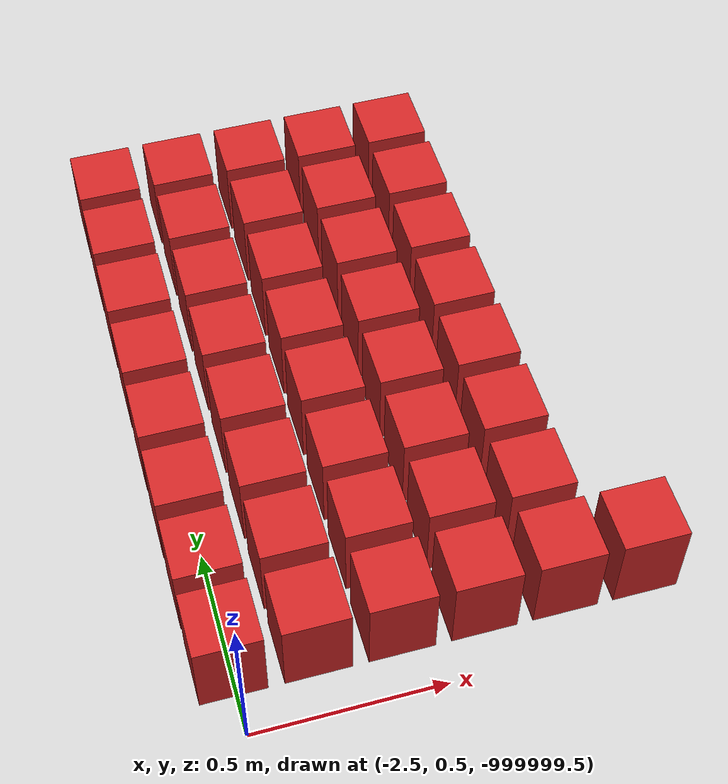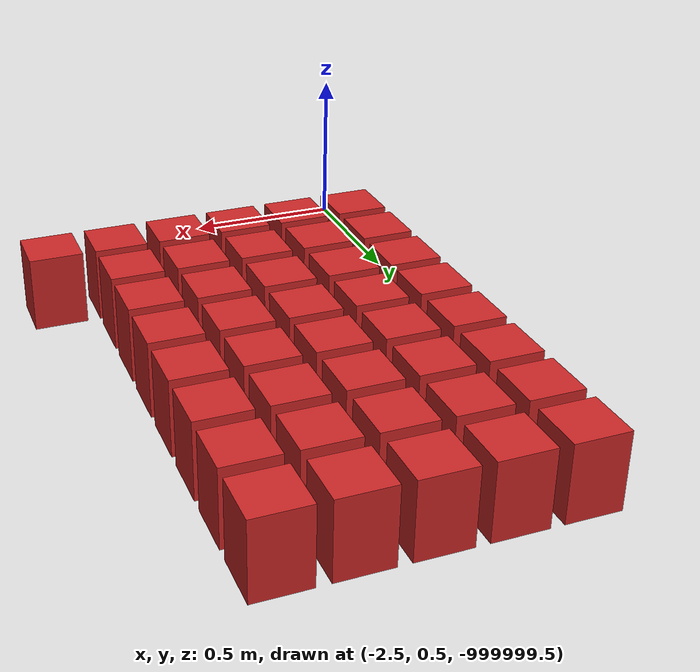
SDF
<sdf version="1.7">
 <world name="default">
  <model name="ground_plane">
   <static>1</static>
   <link name="link">
    <collision name="collision">
     <geometry><plane><normal>0 0 1</normal><size>100 100</size></plane></geometry>
     <surface>
      <contact><collide_bitmask>65535</collide_bitmask></contact>
      <friction><ode><mu>100</mu><mu2>50</mu2></ode></friction>
     </surface>
    </collision>
    <visual name="visual">
     <cast_shadows>0</cast_shadows>
     <geometry><plane><normal>0 0 1</normal><size>100 100</size></plane></geometry>
     <material>
      <script><uri>file://media/materials/scripts/gazebo.material</uri><name>Gazebo/Grey</name></script>
     </material>
    </visual>
   </link>
  </model>
  <model name="wall_345">
   <link name="link">
    <pose>0 0 0.5 0 -0 0</pose>
    <inertial>
     <mass>0.5167</mass>
     <inertia>
      <ixx>0.000861167</ixx>
      <ixy>0</ixy>
      <ixz>0</ixz>
      <iyy>0.000861167</iyy>
      <iyz>0</iyz>
      <izz>0.000861167</izz>
     </inertia>
    </inertial>
    <collision name="collision">
     <geometry><box><size>0.21 0.21 0.25</size></box></geometry>
     <surface>
      <contact>
       <poissons_ratio>0.347</poissons_ratio>
       <elastic_modulus>8.8e+09</elastic_modulus>
       <ode><kp>100000</kp><kd>100</kd><max_vel>100</max_vel><min_depth>0.001</min_depth></ode>
      </contact>
      <friction>
       <torsional>
        <coefficient>1</coefficient>
        <use_patch_radius>0</use_patch_radius>
        <surface_radius>0.01</surface_radius>
       </torsional>
      </friction>
     </surface>
    </collision>
    <visual name="visual">
     <geometry><box><size>0.175 0.175 0.25</size></box></geometry>
     <material>
      <script><uri>file://media/materials/scripts/gazebo.material</uri><name>Gazebo/Red</name></script>
     </material>
    </visual>
   </link>
   <pose>-2.5 0.76087 -1e+06 0 -0 0</pose>
  </model>
  <model name="wall_346">
   <link name="link">
    <pose>0 0 0.5 0 -0 0</pose>
    <inertial>
     <mass>0.5167</mass>
     <inertia>
      <ixx>0.000861167</ixx>
      <ixy>0</ixy>
      <ixz>0</ixz>
      <iyy>0.000861167</iyy>
      <iyz>0</iyz>
      <izz>0.000861167</izz>
     </inertia>
    </inertial>
    <collision name="collision">
     <geometry><box><size>0.21 0.21 0.25</size></box></geometry>
     <surface>
      <contact>
       <poissons_ratio>0.347</poissons_ratio>
       <elastic_modulus>8.8e+09</elastic_modulus>
       <ode><kp>100000</kp><kd>100</kd><max_vel>100</max_vel><min_depth>0.001</min_depth></ode>
      </contact>
      <friction>
       <torsional>
        <coefficient>1</coefficient>
        <use_patch_radius>0</use_patch_radius>
        <surface_radius>0.01</surface_radius>
       </torsional>
      </friction>
     </surface>
    </collision>
    <visual name="visual">
     <geometry><box><size>0.175 0.175 0.25</size></box></geometry>
     <material>
      <script><uri>file://media/materials/scripts/gazebo.material</uri><name>Gazebo/Red</name></script>
     </material>
    </visual>
   </link>
   <pose>-2.28261 0.76087 -1e+06 0 -0 0</pose>
  </model>
  <model name="wall_347">
   <link name="link">
    <pose>0 0 0.5 0 -0 0</pose>
    <inertial>
     <mass>0.5167</mass>
     <inertia>
      <ixx>0.000861167</ixx>
      <ixy>0</ixy>
      <ixz>0</ixz>
      <iyy>0.000861167</iyy>
      <iyz>0</iyz>
      <izz>0.000861167</izz>
     </inertia>
    </inertial>
    <collision name="collision">
     <geometry><box><size>0.21 0.21 0.25</size></box></geometry>
     <surface>
      <contact>
       <poissons_ratio>0.347</poissons_ratio>
       <elastic_modulus>8.8e+09</elastic_modulus>
       <ode><kp>100000</kp><kd>100</kd><max_vel>100</max_vel><min_depth>0.001</min_depth></ode>
      </contact>
      <friction>
       <torsional>
        <coefficient>1</coefficient>
        <use_patch_radius>0</use_patch_radius>
        <surface_radius>0.01</surface_radius>
       </torsional>
      </friction>
     </surface>
    </collision>
    <visual name="visual">
     <geometry><box><size>0.175 0.175 0.25</size></box></geometry>
     <material>
      <script><uri>file://media/materials/scripts/gazebo.material</uri><name>Gazebo/Red</name></script>
     </material>
    </visual>
   </link>
   <pose>-2.06522 0.76087 -1e+06 0 -0 0</pose>
  </model>
  <model name="wall_348">
   <link name="link">
    <pose>0 0 0.5 0 -0 0</pose>
    <inertial>
     <mass>0.5167</mass>
     <inertia>
      <ixx>0.000861167</ixx>
      <ixy>0</ixy>
      <ixz>0</ixz>
      <iyy>0.000861167</iyy>
      <iyz>0</iyz>
      <izz>0.000861167</izz>
     </inertia>
    </inertial>
    <collision name="collision">
     <geometry><box><size>0.21 0.21 0.25</size></box></geometry>
     <surface>
      <contact>
       <poissons_ratio>0.347</poissons_ratio>
       <elastic_modulus>8.8e+09</elastic_modulus>
       <ode><kp>100000</kp><kd>100</kd><max_vel>100</max_vel><min_depth>0.001</min_depth></ode>
      </contact>
      <friction>
       <torsional>
        <coefficient>1</coefficient>
        <use_patch_radius>0</use_patch_radius>
        <surface_radius>0.01</surface_radius>
       </torsional>
      </friction>
     </surface>
    </collision>
    <visual name="visual">
     <geometry><box><size>0.175 0.175 0.25</size></box></geometry>
     <material>
      <script><uri>file://media/materials/scripts/gazebo.material</uri><name>Gazebo/Red</name></script>
     </material>
    </visual>
   </link>
   <pose>-1.84783 0.76087 -1e+06 0 -0 0</pose>
  </model>
  <model name="wall_349">
   <link name="link">
    <pose>0 0 0.5 0 -0 0</pose>
    <inertial>
     <mass>0.5167</mass>
     <inertia>
      <ixx>0.000861167</ixx>
      <ixy>0</ixy>
      <ixz>0</ixz>
      <iyy>0.000861167</iyy>
      <iyz>0</iyz>
      <izz>0.000861167</izz>
     </inertia>
    </inertial>
    <collision name="collision">
     <geometry><box><size>0.21 0.21 0.25</size></box></geometry>
     <surface>
      <contact>
       <poissons_ratio>0.347</poissons_ratio>
       <elastic_modulus>8.8e+09</elastic_modulus>
       <ode><kp>100000</kp><kd>100</kd><max_vel>100</max_vel><min_depth>0.001</min_depth></ode>
      </contact>
      <friction>
       <torsional>
        <coefficient>1</coefficient>
        <use_patch_radius>0</use_patch_radius>
        <surface_radius>0.01</surface_radius>
       </torsional>
      </friction>
     </surface>
    </collision>
    <visual name="visual">
     <geometry><box><size>0.175 0.175 0.25</size></box></geometry>
     <material>
      <script><uri>file://media/materials/scripts/gazebo.material</uri><name>Gazebo/Red</name></script>
     </material>
    </visual>
   </link>
   <pose>-1.63043 0.76087 -1e+06 0 -0 0</pose>
  </model>
  <model name="wall_350">
   <link name="link">
    <pose>0 0 0.5 0 -0 0</pose>
    <inertial>
     <mass>0.5167</mass>
     <inertia>
      <ixx>0.000861167</ixx>
      <ixy>0</ixy>
      <ixz>0</ixz>
      <iyy>0.000861167</iyy>
      <iyz>0</iyz>
      <izz>0.000861167</izz>
     </inertia>
    </inertial>
    <collision name="collision">
     <geometry><box><size>0.21 0.21 0.25</size></box></geometry>
     <surface>
      <contact>
       <poissons_ratio>0.347</poissons_ratio>
       <elastic_modulus>8.8e+09</elastic_modulus>
       <ode><kp>100000</kp><kd>100</kd><max_vel>100</max_vel><min_depth>0.001</min_depth></ode>
      </contact>
      <friction>
       <torsional>
        <coefficient>1</coefficient>
        <use_patch_radius>0</use_patch_radius>
        <surface_radius>0.01</surface_radius>
       </torsional>
      </friction>
     </surface>
    </collision>
    <visual name="visual">
     <geometry><box><size>0.175 0.175 0.25</size></box></geometry>
     <material>
      <script><uri>file://media/materials/scripts/gazebo.material</uri><name>Gazebo/Red</name></script>
     </material>
    </visual>
   </link>
   <pose>-1.41304 0.76087 -1e+06 0 -0 0</pose>
  </model>
  <model name="wall_368">
   <link name="link">
    <pose>0 0 0.5 0 -0 0</pose>
    <inertial>
     <mass>0.5167</mass>
     <inertia>
      <ixx>0.000861167</ixx>
      <ixy>0</ixy>
      <ixz>0</ixz>
      <iyy>0.000861167</iyy>
      <iyz>0</iyz>
      <izz>0.000861167</izz>
     </inertia>
    </inertial>
    <collision name="collision">
     <geometry><box><size>0.21 0.21 0.25</size></box></geometry>
     <surface>
      <contact>
       <poissons_ratio>0.347</poissons_ratio>
       <elastic_modulus>8.8e+09</elastic_modulus>
       <ode><kp>100000</kp><kd>100</kd><max_vel>100</max_vel><min_depth>0.001</min_depth></ode>
      </contact>
      <friction>
       <torsional>
        <coefficient>1</coefficient>
        <use_patch_radius>0</use_patch_radius>
        <surface_radius>0.01</surface_radius>
       </torsional>
      </friction>
     </surface>
    </collision>
    <visual name="visual">
     <geometry><box><size>0.175 0.175 0.25</size></box></geometry>
     <material>
      <script><uri>file://media/materials/scripts/gazebo.material</uri><name>Gazebo/Red</name></script>
     </material>
    </visual>
   </link>
   <pose>-2.5 0.978261 -1e+06 0 -0 0</pose>
  </model>
  <model name="wall_369">
   <link name="link">
    <pose>0 0 0.5 0 -0 0</pose>
    <inertial>
     <mass>0.5167</mass>
     <inertia>
      <ixx>0.000861167</ixx>
      <ixy>0</ixy>
      <ixz>0</ixz>
      <iyy>0.000861167</iyy>
      <iyz>0</iyz>
      <izz>0.000861167</izz>
     </inertia>
    </inertial>
    <collision name="collision">
     <geometry><box><size>0.21 0.21 0.25</size></box></geometry>
     <surface>
      <contact>
       <poissons_ratio>0.347</poissons_ratio>
       <elastic_modulus>8.8e+09</elastic_modulus>
       <ode><kp>100000</kp><kd>100</kd><max_vel>100</max_vel><min_depth>0.001</min_depth></ode>
      </contact>
      <friction>
       <torsional>
        <coefficient>1</coefficient>
        <use_patch_radius>0</use_patch_radius>
        <surface_radius>0.01</surface_radius>
       </torsional>
      </friction>
     </surface>
    </collision>
    <visual name="visual">
     <geometry><box><size>0.175 0.175 0.25</size></box></geometry>
     <material>
      <script><uri>file://media/materials/scripts/gazebo.material</uri><name>Gazebo/Red</name></script>
     </material>
    </visual>
   </link>
   <pose>-2.28261 0.978261 -1e+06 0 -0 0</pose>
  </model>
  <model name="wall_370">
   <link name="link">
    <pose>0 0 0.5 0 -0 0</pose>
    <inertial>
     <mass>0.5167</mass>
     <inertia>
      <ixx>0.000861167</ixx>
      <ixy>0</ixy>
      <ixz>0</ixz>
      <iyy>0.000861167</iyy>
      <iyz>0</iyz>
      <izz>0.000861167</izz>
     </inertia>
    </inertial>
    <collision name="collision">
     <geometry><box><size>0.21 0.21 0.25</size></box></geometry>
     <surface>
      <contact>
       <poissons_ratio>0.347</poissons_ratio>
       <elastic_modulus>8.8e+09</elastic_modulus>
       <ode><kp>100000</kp><kd>100</kd><max_vel>100</max_vel><min_depth>0.001</min_depth></ode>
      </contact>
      <friction>
       <torsional>
        <coefficient>1</coefficient>
        <use_patch_radius>0</use_patch_radius>
        <surface_radius>0.01</surface_radius>
       </torsional>
      </friction>
     </surface>
    </collision>
    <visual name="visual">
     <geometry><box><size>0.175 0.175 0.25</size></box></geometry>
     <material>
      <script><uri>file://media/materials/scripts/gazebo.material</uri><name>Gazebo/Red</name></script>
     </material>
    </visual>
   </link>
   <pose>-2.06522 0.978261 -1e+06 0 -0 0</pose>
  </model>
  <model name="wall_371">
   <link name="link">
    <pose>0 0 0.5 0 -0 0</pose>
    <inertial>
     <mass>0.5167</mass>
     <inertia>
      <ixx>0.000861167</ixx>
      <ixy>0</ixy>
      <ixz>0</ixz>
      <iyy>0.000861167</iyy>
      <iyz>0</iyz>
      <izz>0.000861167</izz>
     </inertia>
    </inertial>
    <collision name="collision">
     <geometry><box><size>0.21 0.21 0.25</size></box></geometry>
     <surface>
      <contact>
       <poissons_ratio>0.347</poissons_ratio>
       <elastic_modulus>8.8e+09</elastic_modulus>
       <ode><kp>100000</kp><kd>100</kd><max_vel>100</max_vel><min_depth>0.001</min_depth></ode>
      </contact>
      <friction>
       <torsional>
        <coefficient>1</coefficient>
        <use_patch_radius>0</use_patch_radius>
        <surface_radius>0.01</surface_radius>
       </torsional>
      </friction>
     </surface>
    </collision>
    <visual name="visual">
     <geometry><box><size>0.175 0.175 0.25</size></box></geometry>
     <material>
      <script><uri>file://media/materials/scripts/gazebo.material</uri><name>Gazebo/Red</name></script>
     </material>
    </visual>
   </link>
   <pose>-1.84783 0.978261 -1e+06 0 -0 0</pose>
  </model>
  <model name="wall_372">
   <link name="link">
    <pose>0 0 0.5 0 -0 0</pose>
    <inertial>
     <mass>0.5167</mass>
     <inertia>
      <ixx>0.000861167</ixx>
      <ixy>0</ixy>
      <ixz>0</ixz>
      <iyy>0.000861167</iyy>
      <iyz>0</iyz>
      <izz>0.000861167</izz>
     </inertia>
    </inertial>
    <collision name="collision">
     <geometry><box><size>0.21 0.21 0.25</size></box></geometry>
     <surface>
      <contact>
       <poissons_ratio>0.347</poissons_ratio>
       <elastic_modulus>8.8e+09</elastic_modulus>
       <ode><kp>100000</kp><kd>100</kd><max_vel>100</max_vel><min_depth>0.001</min_depth></ode>
      </contact>
      <friction>
       <torsional>
        <coefficient>1</coefficient>
        <use_patch_radius>0</use_patch_radius>
        <surface_radius>0.01</surface_radius>
       </torsional>
      </friction>
     </surface>
    </collision>
    <visual name="visual">
     <geometry><box><size>0.175 0.175 0.25</size></box></geometry>
     <material>
      <script><uri>file://media/materials/scripts/gazebo.material</uri><name>Gazebo/Red</name></script>
     </material>
    </visual>
   </link>
   <pose>-1.63043 0.978261 -1e+06 0 -0 0</pose>
  </model>
  <model name="wall_391">
   <link name="link">
    <pose>0 0 0.5 0 -0 0</pose>
    <inertial>
     <mass>0.5167</mass>
     <inertia>
      <ixx>0.000861167</ixx>
      <ixy>0</ixy>
      <ixz>0</ixz>
      <iyy>0.000861167</iyy>
      <iyz>0</iyz>
      <izz>0.000861167</izz>
     </inertia>
    </inertial>
    <collision name="collision">
     <geometry><box><size>0.21 0.21 0.25</size></box></geometry>
     <surface>
      <contact>
       <poissons_ratio>0.347</poissons_ratio>
       <elastic_modulus>8.8e+09</elastic_modulus>
       <ode><kp>100000</kp><kd>100</kd><max_vel>100</max_vel><min_depth>0.001</min_depth></ode>
      </contact>
      <friction>
       <torsional>
        <coefficient>1</coefficient>
        <use_patch_radius>0</use_patch_radius>
        <surface_radius>0.01</surface_radius>
       </torsional>
      </friction>
     </surface>
    </collision>
    <visual name="visual">
     <geometry><box><size>0.175 0.175 0.25</size></box></geometry>
     <material>
      <script><uri>file://media/materials/scripts/gazebo.material</uri><name>Gazebo/Red</name></script>
     </material>
    </visual>
   </link>
   <pose>-2.5 1.19565 -1e+06 0 -0 0</pose>
  </model>
  <model name="wall_392">
   <link name="link">
    <pose>0 0 0.5 0 -0 0</pose>
    <inertial>
     <mass>0.5167</mass>
     <inertia>
      <ixx>0.000861167</ixx>
      <ixy>0</ixy>
      <ixz>0</ixz>
      <iyy>0.000861167</iyy>
      <iyz>0</iyz>
      <izz>0.000861167</izz>
     </inertia>
    </inertial>
    <collision name="collision">
     <geometry><box><size>0.21 0.21 0.25</size></box></geometry>
     <surface>
      <contact>
       <poissons_ratio>0.347</poissons_ratio>
       <elastic_modulus>8.8e+09</elastic_modulus>
       <ode><kp>100000</kp><kd>100</kd><max_vel>100</max_vel><min_depth>0.001</min_depth></ode>
      </contact>
      <friction>
       <torsional>
        <coefficient>1</coefficient>
        <use_patch_radius>0</use_patch_radius>
        <surface_radius>0.01</surface_radius>
       </torsional>
      </friction>
     </surface>
    </collision>
    <visual name="visual">
     <geometry><box><size>0.175 0.175 0.25</size></box></geometry>
     <material>
      <script><uri>file://media/materials/scripts/gazebo.material</uri><name>Gazebo/Red</name></script>
     </material>
    </visual>
   </link>
   <pose>-2.28261 1.19565 -1e+06 0 -0 0</pose>
  </model>
  <model name="wall_393">
   <link name="link">
    <pose>0 0 0.5 0 -0 0</pose>
    <inertial>
     <mass>0.5167</mass>
     <inertia>
      <ixx>0.000861167</ixx>
      <ixy>0</ixy>
      <ixz>0</ixz>
      <iyy>0.000861167</iyy>
      <iyz>0</iyz>
      <izz>0.000861167</izz>
     </inertia>
    </inertial>
    <collision name="collision">
     <geometry><box><size>0.21 0.21 0.25</size></box></geometry>
     <surface>
      <contact>
       <poissons_ratio>0.347</poissons_ratio>
       <elastic_modulus>8.8e+09</elastic_modulus>
       <ode><kp>100000</kp><kd>100</kd><max_vel>100</max_vel><min_depth>0.001</min_depth></ode>
      </contact>
      <friction>
       <torsional>
        <coefficient>1</coefficient>
        <use_patch_radius>0</use_patch_radius>
        <surface_radius>0.01</surface_radius>
       </torsional>
      </friction>
     </surface>
    </collision>
    <visual name="visual">
     <geometry><box><size>0.175 0.175 0.25</size></box></geometry>
     <material>
      <script><uri>file://media/materials/scripts/gazebo.material</uri><name>Gazebo/Red</name></script>
     </material>
    </visual>
   </link>
   <pose>-2.06522 1.19565 -1e+06 0 -0 0</pose>
  </model>
  <model name="wall_394">
   <link name="link">
    <pose>0 0 0.5 0 -0 0</pose>
    <inertial>
     <mass>0.5167</mass>
     <inertia>
      <ixx>0.000861167</ixx>
      <ixy>0</ixy>
      <ixz>0</ixz>
      <iyy>0.000861167</iyy>
      <iyz>0</iyz>
      <izz>0.000861167</izz>
     </inertia>
    </inertial>
    <collision name="collision">
     <geometry><box><size>0.21 0.21 0.25</size></box></geometry>
     <surface>
      <contact>
       <poissons_ratio>0.347</poissons_ratio>
       <elastic_modulus>8.8e+09</elastic_modulus>
       <ode><kp>100000</kp><kd>100</kd><max_vel>100</max_vel><min_depth>0.001</min_depth></ode>
      </contact>
      <friction>
       <torsional>
        <coefficient>1</coefficient>
        <use_patch_radius>0</use_patch_radius>
        <surface_radius>0.01</surface_radius>
       </torsional>
      </friction>
     </surface>
    </collision>
    <visual name="visual">
     <geometry><box><size>0.175 0.175 0.25</size></box></geometry>
     <material>
      <script><uri>file://media/materials/scripts/gazebo.material</uri><name>Gazebo/Red</name></script>
     </material>
    </visual>
   </link>
   <pose>-1.84783 1.19565 -1e+06 0 -0 0</pose>
  </model>
  <model name="wall_395">
   <link name="link">
    <pose>0 0 0.5 0 -0 0</pose>
    <inertial>
     <mass>0.5167</mass>
     <inertia>
      <ixx>0.000861167</ixx>
      <ixy>0</ixy>
      <ixz>0</ixz>
      <iyy>0.000861167</iyy>
      <iyz>0</iyz>
      <izz>0.000861167</izz>
     </inertia>
    </inertial>
    <collision name="collision">
     <geometry><box><size>0.21 0.21 0.25</size></box></geometry>
     <surface>
      <contact>
       <poissons_ratio>0.347</poissons_ratio>
       <elastic_modulus>8.8e+09</elastic_modulus>
       <ode><kp>100000</kp><kd>100</kd><max_vel>100</max_vel><min_depth>0.001</min_depth></ode>
      </contact>
      <friction>
       <torsional>
        <coefficient>1</coefficient>
        <use_patch_radius>0</use_patch_radius>
        <surface_radius>0.01</surface_radius>
       </torsional>
      </friction>
     </surface>
    </collision>
    <visual name="visual">
     <geometry><box><size>0.175 0.175 0.25</size></box></geometry>
     <material>
      <script><uri>file://media/materials/scripts/gazebo.material</uri><name>Gazebo/Red</name></script>
     </material>
    </visual>
   </link>
   <pose>-1.63043 1.19565 -1e+06 0 -0 0</pose>
  </model>
  <model name="wall_414">
   <link name="link">
    <pose>0 0 0.5 0 -0 0</pose>
    <inertial>
     <mass>0.5167</mass>
     <inertia>
      <ixx>0.000861167</ixx>
      <ixy>0</ixy>
      <ixz>0</ixz>
      <iyy>0.000861167</iyy>
      <iyz>0</iyz>
      <izz>0.000861167</izz>
     </inertia>
    </inertial>
    <collision name="collision">
     <geometry><box><size>0.21 0.21 0.25</size></box></geometry>
     <surface>
      <contact>
       <poissons_ratio>0.347</poissons_ratio>
       <elastic_modulus>8.8e+09</elastic_modulus>
       <ode><kp>100000</kp><kd>100</kd><max_vel>100</max_vel><min_depth>0.001</min_depth></ode>
      </contact>
      <friction>
       <torsional>
        <coefficient>1</coefficient>
        <use_patch_radius>0</use_patch_radius>
        <surface_radius>0.01</surface_radius>
       </torsional>
      </friction>
     </surface>
    </collision>
    <visual name="visual">
     <geometry><box><size>0.175 0.175 0.25</size></box></geometry>
     <material>
      <script><uri>file://media/materials/scripts/gazebo.material</uri><name>Gazebo/Red</name></script>
     </material>
    </visual>
   </link>
   <pose>-2.5 1.41304 -1e+06 0 -0 0</pose>
  </model>
  <model name="wall_415">
   <link name="link">
    <pose>0 0 0.5 0 -0 0</pose>
    <inertial>
     <mass>0.5167</mass>
     <inertia>
      <ixx>0.000861167</ixx>
      <ixy>0</ixy>
      <ixz>0</ixz>
      <iyy>0.000861167</iyy>
      <iyz>0</iyz>
      <izz>0.000861167</izz>
     </inertia>
    </inertial>
    <collision name="collision">
     <geometry><box><size>0.21 0.21 0.25</size></box></geometry>
     <surface>
      <contact>
       <poissons_ratio>0.347</poissons_ratio>
       <elastic_modulus>8.8e+09</elastic_modulus>
       <ode><kp>100000</kp><kd>100</kd><max_vel>100</max_vel><min_depth>0.001</min_depth></ode>
      </contact>
      <friction>
       <torsional>
        <coefficient>1</coefficient>
        <use_patch_radius>0</use_patch_radius>
        <surface_radius>0.01</surface_radius>
       </torsional>
      </friction>
     </surface>
    </collision>
    <visual name="visual">
     <geometry><box><size>0.175 0.175 0.25</size></box></geometry>
     <material>
      <script><uri>file://media/materials/scripts/gazebo.material</uri><name>Gazebo/Red</name></script>
     </material>
    </visual>
   </link>
   <pose>-2.28261 1.41304 -1e+06 0 -0 0</pose>
  </model>
  <model name="wall_416">
   <link name="link">
    <pose>0 0 0.5 0 -0 0</pose>
    <inertial>
     <mass>0.5167</mass>
     <inertia>
      <ixx>0.000861167</ixx>
      <ixy>0</ixy>
      <ixz>0</ixz>
      <iyy>0.000861167</iyy>
      <iyz>0</iyz>
      <izz>0.000861167</izz>
     </inertia>
    </inertial>
    <collision name="collision">
     <geometry><box><size>0.21 0.21 0.25</size></box></geometry>
     <surface>
      <contact>
       <poissons_ratio>0.347</poissons_ratio>
       <elastic_modulus>8.8e+09</elastic_modulus>
       <ode><kp>100000</kp><kd>100</kd><max_vel>100</max_vel><min_depth>0.001</min_depth></ode>
      </contact>
      <friction>
       <torsional>
        <coefficient>1</coefficient>
        <use_patch_radius>0</use_patch_radius>
        <surface_radius>0.01</surface_radius>
       </torsional>
      </friction>
     </surface>
    </collision>
    <visual name="visual">
     <geometry><box><size>0.175 0.175 0.25</size></box></geometry>
     <material>
      <script><uri>file://media/materials/scripts/gazebo.material</uri><name>Gazebo/Red</name></script>
     </material>
    </visual>
   </link>
   <pose>-2.06522 1.41304 -1e+06 0 -0 0</pose>
  </model>
  <model name="wall_417">
   <link name="link">
    <pose>0 0 0.5 0 -0 0</pose>
    <inertial>
     <mass>0.5167</mass>
     <inertia>
      <ixx>0.000861167</ixx>
      <ixy>0</ixy>
      <ixz>0</ixz>
      <iyy>0.000861167</iyy>
      <iyz>0</iyz>
      <izz>0.000861167</izz>
     </inertia>
    </inertial>
    <collision name="collision">
     <geometry><box><size>0.21 0.21 0.25</size></box></geometry>
     <surface>
      <contact>
       <poissons_ratio>0.347</poissons_ratio>
       <elastic_modulus>8.8e+09</elastic_modulus>
       <ode><kp>100000</kp><kd>100</kd><max_vel>100</max_vel><min_depth>0.001</min_depth></ode>
      </contact>
      <friction>
       <torsional>
        <coefficient>1</coefficient>
        <use_patch_radius>0</use_patch_radius>
        <surface_radius>0.01</surface_radius>
       </torsional>
      </friction>
     </surface>
    </collision>
    <visual name="visual">
     <geometry><box><size>0.175 0.175 0.25</size></box></geometry>
     <material>
      <script><uri>file://media/materials/scripts/gazebo.material</uri><name>Gazebo/Red</name></script>
     </material>
    </visual>
   </link>
   <pose>-1.84783 1.41304 -1e+06 0 -0 0</pose>
  </model>
  <model name="wall_418">
   <link name="link">
    <pose>0 0 0.5 0 -0 0</pose>
    <inertial>
     <mass>0.5167</mass>
     <inertia>
      <ixx>0.000861167</ixx>
      <ixy>0</ixy>
      <ixz>0</ixz>
      <iyy>0.000861167</iyy>
      <iyz>0</iyz>
      <izz>0.000861167</izz>
     </inertia>
    </inertial>
    <collision name="collision">
     <geometry><box><size>0.21 0.21 0.25</size></box></geometry>
     <surface>
      <contact>
       <poissons_ratio>0.347</poissons_ratio>
       <elastic_modulus>8.8e+09</elastic_modulus>
       <ode><kp>100000</kp><kd>100</kd><max_vel>100</max_vel><min_depth>0.001</min_depth></ode>
      </contact>
      <friction>
       <torsional>
        <coefficient>1</coefficient>
        <use_patch_radius>0</use_patch_radius>
        <surface_radius>0.01</surface_radius>
       </torsional>
      </friction>
     </surface>
    </collision>
    <visual name="visual">
     <geometry><box><size>0.175 0.175 0.25</size></box></geometry>
     <material>
      <script><uri>file://media/materials/scripts/gazebo.material</uri><name>Gazebo/Red</name></script>
     </material>
    </visual>
   </link>
   <pose>-1.63043 1.41304 -1e+06 0 -0 0</pose>
  </model>
  <model name="wall_437">
   <link name="link">
    <pose>0 0 0.5 0 -0 0</pose>
    <inertial>
     <mass>0.5167</mass>
     <inertia>
      <ixx>0.000861167</ixx>
      <ixy>0</ixy>
      <ixz>0</ixz>
      <iyy>0.000861167</iyy>
      <iyz>0</iyz>
      <izz>0.000861167</izz>
     </inertia>
    </inertial>
    <collision name="collision">
     <geometry><box><size>0.21 0.21 0.25</size></box></geometry>
     <surface>
      <contact>
       <poissons_ratio>0.347</poissons_ratio>
       <elastic_modulus>8.8e+09</elastic_modulus>
       <ode><kp>100000</kp><kd>100</kd><max_vel>100</max_vel><min_depth>0.001</min_depth></ode>
      </contact>
      <friction>
       <torsional>
        <coefficient>1</coefficient>
        <use_patch_radius>0</use_patch_radius>
        <surface_radius>0.01</surface_radius>
       </torsional>
      </friction>
     </surface>
    </collision>
    <visual name="visual">
     <geometry><box><size>0.175 0.175 0.25</size></box></geometry>
     <material>
      <script><uri>file://media/materials/scripts/gazebo.material</uri><name>Gazebo/Red</name></script>
     </material>
    </visual>
   </link>
   <pose>-2.5 1.63043 -1e+06 0 -0 0</pose>
  </model>
  <model name="wall_438">
   <link name="link">
    <pose>0 0 0.5 0 -0 0</pose>
    <inertial>
     <mass>0.5167</mass>
     <inertia>
      <ixx>0.000861167</ixx>
      <ixy>0</ixy>
      <ixz>0</ixz>
      <iyy>0.000861167</iyy>
      <iyz>0</iyz>
      <izz>0.000861167</izz>
     </inertia>
    </inertial>
    <collision name="collision">
     <geometry><box><size>0.21 0.21 0.25</size></box></geometry>
     <surface>
      <contact>
       <poissons_ratio>0.347</poissons_ratio>
       <elastic_modulus>8.8e+09</elastic_modulus>
       <ode><kp>100000</kp><kd>100</kd><max_vel>100</max_vel><min_depth>0.001</min_depth></ode>
      </contact>
      <friction>
       <torsional>
        <coefficient>1</coefficient>
        <use_patch_radius>0</use_patch_radius>
        <surface_radius>0.01</surface_radius>
       </torsional>
      </friction>
     </surface>
    </collision>
    <visual name="visual">
     <geometry><box><size>0.175 0.175 0.25</size></box></geometry>
     <material>
      <script><uri>file://media/materials/scripts/gazebo.material</uri><name>Gazebo/Red</name></script>
     </material>
    </visual>
   </link>
   <pose>-2.28261 1.63043 -1e+06 0 -0 0</pose>
  </model>
  <model name="wall_439">
   <link name="link">
    <pose>0 0 0.5 0 -0 0</pose>
    <inertial>
     <mass>0.5167</mass>
     <inertia>
      <ixx>0.000861167</ixx>
      <ixy>0</ixy>
      <ixz>0</ixz>
      <iyy>0.000861167</iyy>
      <iyz>0</iyz>
      <izz>0.000861167</izz>
     </inertia>
    </inertial>
    <collision name="collision">
     <geometry><box><size>0.21 0.21 0.25</size></box></geometry>
     <surface>
      <contact>
       <poissons_ratio>0.347</poissons_ratio>
       <elastic_modulus>8.8e+09</elastic_modulus>
       <ode><kp>100000</kp><kd>100</kd><max_vel>100</max_vel><min_depth>0.001</min_depth></ode>
      </contact>
      <friction>
       <torsional>
        <coefficient>1</coefficient>
        <use_patch_radius>0</use_patch_radius>
        <surface_radius>0.01</surface_radius>
       </torsional>
      </friction>
     </surface>
    </collision>
    <visual name="visual">
     <geometry><box><size>0.175 0.175 0.25</size></box></geometry>
     <material>
      <script><uri>file://media/materials/scripts/gazebo.material</uri><name>Gazebo/Red</name></script>
     </material>
    </visual>
   </link>
   <pose>-2.06522 1.63043 -1e+06 0 -0 0</pose>
  </model>
  <model name="wall_440">
   <link name="link">
    <pose>0 0 0.5 0 -0 0</pose>
    <inertial>
     <mass>0.5167</mass>
     <inertia>
      <ixx>0.000861167</ixx>
      <ixy>0</ixy>
      <ixz>0</ixz>
      <iyy>0.000861167</iyy>
      <iyz>0</iyz>
      <izz>0.000861167</izz>
     </inertia>
    </inertial>
    <collision name="collision">
     <geometry><box><size>0.21 0.21 0.25</size></box></geometry>
     <surface>
      <contact>
       <poissons_ratio>0.347</poissons_ratio>
       <elastic_modulus>8.8e+09</elastic_modulus>
       <ode><kp>100000</kp><kd>100</kd><max_vel>100</max_vel><min_depth>0.001</min_depth></ode>
      </contact>
      <friction>
       <torsional>
        <coefficient>1</coefficient>
        <use_patch_radius>0</use_patch_radius>
        <surface_radius>0.01</surface_radius>
       </torsional>
      </friction>
     </surface>
    </collision>
    <visual name="visual">
     <geometry><box><size>0.175 0.175 0.25</size></box></geometry>
     <material>
      <script><uri>file://media/materials/scripts/gazebo.material</uri><name>Gazebo/Red</name></script>
     </material>
    </visual>
   </link>
   <pose>-1.84783 1.63043 -1e+06 0 -0 0</pose>
  </model>
  <model name="wall_441">
   <link name="link">
    <pose>0 0 0.5 0 -0 0</pose>
    <inertial>
     <mass>0.5167</mass>
     <inertia>
      <ixx>0.000861167</ixx>
      <ixy>0</ixy>
      <ixz>0</ixz>
      <iyy>0.000861167</iyy>
      <iyz>0</iyz>
      <izz>0.000861167</izz>
     </inertia>
    </inertial>
    <collision name="collision">
     <geometry><box><size>0.21 0.21 0.25</size></box></geometry>
     <surface>
      <contact>
       <poissons_ratio>0.347</poissons_ratio>
       <elastic_modulus>8.8e+09</elastic_modulus>
       <ode><kp>100000</kp><kd>100</kd><max_vel>100</max_vel><min_depth>0.001</min_depth></ode>
      </contact>
      <friction>
       <torsional>
        <coefficient>1</coefficient>
        <use_patch_radius>0</use_patch_radius>
        <surface_radius>0.01</surface_radius>
       </torsional>
      </friction>
     </surface>
    </collision>
    <visual name="visual">
     <geometry><box><size>0.175 0.175 0.25</size></box></geometry>
     <material>
      <script><uri>file://media/materials/scripts/gazebo.material</uri><name>Gazebo/Red</name></script>
     </material>
    </visual>
   </link>
   <pose>-1.63043 1.63043 -1e+06 0 -0 0</pose>
  </model>
  <model name="wall_460">
   <link name="link">
    <pose>0 0 0.5 0 -0 0</pose>
    <inertial>
     <mass>0.5167</mass>
     <inertia>
      <ixx>0.000861167</ixx>
      <ixy>0</ixy>
      <ixz>0</ixz>
      <iyy>0.000861167</iyy>
      <iyz>0</iyz>
      <izz>0.000861167</izz>
     </inertia>
    </inertial>
    <collision name="collision">
     <geometry><box><size>0.21 0.21 0.25</size></box></geometry>
     <surface>
      <contact>
       <poissons_ratio>0.347</poissons_ratio>
       <elastic_modulus>8.8e+09</elastic_modulus>
       <ode><kp>100000</kp><kd>100</kd><max_vel>100</max_vel><min_depth>0.001</min_depth></ode>
      </contact>
      <friction>
       <torsional>
        <coefficient>1</coefficient>
        <use_patch_radius>0</use_patch_radius>
        <surface_radius>0.01</surface_radius>
       </torsional>
      </friction>
     </surface>
    </collision>
    <visual name="visual">
     <geometry><box><size>0.175 0.175 0.25</size></box></geometry>
     <material>
      <script><uri>file://media/materials/scripts/gazebo.material</uri><name>Gazebo/Red</name></script>
     </material>
    </visual>
   </link>
   <pose>-2.5 1.84783 -1e+06 0 -0 0</pose>
  </model>
  <model name="wall_461">
   <link name="link">
    <pose>0 0 0.5 0 -0 0</pose>
    <inertial>
     <mass>0.5167</mass>
     <inertia>
      <ixx>0.000861167</ixx>
      <ixy>0</ixy>
      <ixz>0</ixz>
      <iyy>0.000861167</iyy>
      <iyz>0</iyz>
      <izz>0.000861167</izz>
     </inertia>
    </inertial>
    <collision name="collision">
     <geometry><box><size>0.21 0.21 0.25</size></box></geometry>
     <surface>
      <contact>
       <poissons_ratio>0.347</poissons_ratio>
       <elastic_modulus>8.8e+09</elastic_modulus>
       <ode><kp>100000</kp><kd>100</kd><max_vel>100</max_vel><min_depth>0.001</min_depth></ode>
      </contact>
      <friction>
       <torsional>
        <coefficient>1</coefficient>
        <use_patch_radius>0</use_patch_radius>
        <surface_radius>0.01</surface_radius>
       </torsional>
      </friction>
     </surface>
    </collision>
    <visual name="visual">
     <geometry><box><size>0.175 0.175 0.25</size></box></geometry>
     <material>
      <script><uri>file://media/materials/scripts/gazebo.material</uri><name>Gazebo/Red</name></script>
     </material>
    </visual>
   </link>
   <pose>-2.28261 1.84783 -1e+06 0 -0 0</pose>
  </model>
  <model name="wall_462">
   <link name="link">
    <pose>0 0 0.5 0 -0 0</pose>
    <inertial>
     <mass>0.5167</mass>
     <inertia>
      <ixx>0.000861167</ixx>
      <ixy>0</ixy>
      <ixz>0</ixz>
      <iyy>0.000861167</iyy>
      <iyz>0</iyz>
      <izz>0.000861167</izz>
     </inertia>
    </inertial>
    <collision name="collision">
     <geometry><box><size>0.21 0.21 0.25</size></box></geometry>
     <surface>
      <contact>
       <poissons_ratio>0.347</poissons_ratio>
       <elastic_modulus>8.8e+09</elastic_modulus>
       <ode><kp>100000</kp><kd>100</kd><max_vel>100</max_vel><min_depth>0.001</min_depth></ode>
      </contact>
      <friction>
       <torsional>
        <coefficient>1</coefficient>
        <use_patch_radius>0</use_patch_radius>
        <surface_radius>0.01</surface_radius>
       </torsional>
      </friction>
     </surface>
    </collision>
    <visual name="visual">
     <geometry><box><size>0.175 0.175 0.25</size></box></geometry>
     <material>
      <script><uri>file://media/materials/scripts/gazebo.material</uri><name>Gazebo/Red</name></script>
     </material>
    </visual>
   </link>
   <pose>-2.06522 1.84783 -1e+06 0 -0 0</pose>
  </model>
  <model name="wall_463">
   <link name="link">
    <pose>0 0 0.5 0 -0 0</pose>
    <inertial>
     <mass>0.5167</mass>
     <inertia>
      <ixx>0.000861167</ixx>
      <ixy>0</ixy>
      <ixz>0</ixz>
      <iyy>0.000861167</iyy>
      <iyz>0</iyz>
      <izz>0.000861167</izz>
     </inertia>
    </inertial>
    <collision name="collision">
     <geometry><box><size>0.21 0.21 0.25</size></box></geometry>
     <surface>
      <contact>
       <poissons_ratio>0.347</poissons_ratio>
       <elastic_modulus>8.8e+09</elastic_modulus>
       <ode><kp>100000</kp><kd>100</kd><max_vel>100</max_vel><min_depth>0.001</min_depth></ode>
      </contact>
      <friction>
       <torsional>
        <coefficient>1</coefficient>
        <use_patch_radius>0</use_patch_radius>
        <surface_radius>0.01</surface_radius>
       </torsional>
      </friction>
     </surface>
    </collision>
    <visual name="visual">
     <geometry><box><size>0.175 0.175 0.25</size></box></geometry>
     <material>
      <script><uri>file://media/materials/scripts/gazebo.material</uri><name>Gazebo/Red</name></script>
     </material>
    </visual>
   </link>
   <pose>-1.84783 1.84783 -1e+06 0 -0 0</pose>
  </model>
  <model name="wall_464">
   <link name="link">
    <pose>0 0 0.5 0 -0 0</pose>
    <inertial>
     <mass>0.5167</mass>
     <inertia>
      <ixx>0.000861167</ixx>
      <ixy>0</ixy>
      <ixz>0</ixz>
      <iyy>0.000861167</iyy>
      <iyz>0</iyz>
      <izz>0.000861167</izz>
     </inertia>
    </inertial>
    <collision name="collision">
     <geometry><box><size>0.21 0.21 0.25</size></box></geometry>
     <surface>
      <contact>
       <poissons_ratio>0.347</poissons_ratio>
       <elastic_modulus>8.8e+09</elastic_modulus>
       <ode><kp>100000</kp><kd>100</kd><max_vel>100</max_vel><min_depth>0.001</min_depth></ode>
      </contact>
      <friction>
       <torsional>
        <coefficient>1</coefficient>
        <use_patch_radius>0</use_patch_radius>
        <surface_radius>0.01</surface_radius>
       </torsional>
      </friction>
     </surface>
    </collision>
    <visual name="visual">
     <geometry><box><size>0.175 0.175 0.25</size></box></geometry>
     <material>
      <script><uri>file://media/materials/scripts/gazebo.material</uri><name>Gazebo/Red</name></script>
     </material>
    </visual>
   </link>
   <pose>-1.63043 1.84783 -1e+06 0 -0 0</pose>
  </model>
  <model name="wall_483">
   <link name="link">
    <pose>0 0 0.5 0 -0 0</pose>
    <inertial>
     <mass>0.5167</mass>
     <inertia>
      <ixx>0.000861167</ixx>
      <ixy>0</ixy>
      <ixz>0</ixz>
      <iyy>0.000861167</iyy>
      <iyz>0</iyz>
      <izz>0.000861167</izz>
     </inertia>
    </inertial>
    <collision name="collision">
     <geometry><box><size>0.21 0.21 0.25</size></box></geometry>
     <surface>
      <contact>
       <poissons_ratio>0.347</poissons_ratio>
       <elastic_modulus>8.8e+09</elastic_modulus>
       <ode><kp>100000</kp><kd>100</kd><max_vel>100</max_vel><min_depth>0.001</min_depth></ode>
      </contact>
      <friction>
       <torsional>
        <coefficient>1</coefficient>
        <use_patch_radius>0</use_patch_radius>
        <surface_radius>0.01</surface_radius>
       </torsional>
      </friction>
     </surface>
    </collision>
    <visual name="visual">
     <geometry><box><size>0.175 0.175 0.25</size></box></geometry>
     <material>
      <script><uri>file://media/materials/scripts/gazebo.material</uri><name>Gazebo/Red</name></script>
     </material>
    </visual>
   </link>
   <pose>-2.5 2.06522 -1e+06 0 -0 0</pose>
  </model>
  <model name="wall_484">
   <link name="link">
    <pose>0 0 0.5 0 -0 0</pose>
    <inertial>
     <mass>0.5167</mass>
     <inertia>
      <ixx>0.000861167</ixx>
      <ixy>0</ixy>
      <ixz>0</ixz>
      <iyy>0.000861167</iyy>
      <iyz>0</iyz>
      <izz>0.000861167</izz>
     </inertia>
    </inertial>
    <collision name="collision">
     <geometry><box><size>0.21 0.21 0.25</size></box></geometry>
     <surface>
      <contact>
       <poissons_ratio>0.347</poissons_ratio>
       <elastic_modulus>8.8e+09</elastic_modulus>
       <ode><kp>100000</kp><kd>100</kd><max_vel>100</max_vel><min_depth>0.001</min_depth></ode>
      </contact>
      <friction>
       <torsional>
        <coefficient>1</coefficient>
        <use_patch_radius>0</use_patch_radius>
        <surface_radius>0.01</surface_radius>
       </torsional>
      </friction>
     </surface>
    </collision>
    <visual name="visual">
     <geometry><box><size>0.175 0.175 0.25</size></box></geometry>
     <material>
      <script><uri>file://media/materials/scripts/gazebo.material</uri><name>Gazebo/Red</name></script>
     </material>
    </visual>
   </link>
   <pose>-2.28261 2.06522 -1e+06 0 -0 0</pose>
  </model>
  <model name="wall_485">
   <link name="link">
    <pose>0 0 0.5 0 -0 0</pose>
    <inertial>
     <mass>0.5167</mass>
     <inertia>
      <ixx>0.000861167</ixx>
      <ixy>0</ixy>
      <ixz>0</ixz>
      <iyy>0.000861167</iyy>
      <iyz>0</iyz>
      <izz>0.000861167</izz>
     </inertia>
    </inertial>
    <collision name="collision">
     <geometry><box><size>0.21 0.21 0.25</size></box></geometry>
     <surface>
      <contact>
       <poissons_ratio>0.347</poissons_ratio>
       <elastic_modulus>8.8e+09</elastic_modulus>
       <ode><kp>100000</kp><kd>100</kd><max_vel>100</max_vel><min_depth>0.001</min_depth></ode>
      </contact>
      <friction>
       <torsional>
        <coefficient>1</coefficient>
        <use_patch_radius>0</use_patch_radius>
        <surface_radius>0.01</surface_radius>
       </torsional>
      </friction>
     </surface>
    </collision>
    <visual name="visual">
     <geometry><box><size>0.175 0.175 0.25</size></box></geometry>
     <material>
      <script><uri>file://media/materials/scripts/gazebo.material</uri><name>Gazebo/Red</name></script>
     </material>
    </visual>
   </link>
   <pose>-2.06522 2.06522 -1e+06 0 -0 0</pose>
  </model>
  <model name="wall_486">
   <link name="link">
    <pose>0 0 0.5 0 -0 0</pose>
    <inertial>
     <mass>0.5167</mass>
     <inertia>
      <ixx>0.000861167</ixx>
      <ixy>0</ixy>
      <ixz>0</ixz>
      <iyy>0.000861167</iyy>
      <iyz>0</iyz>
      <izz>0.000861167</izz>
     </inertia>
    </inertial>
    <collision name="collision">
     <geometry><box><size>0.21 0.21 0.25</size></box></geometry>
     <surface>
      <contact>
       <poissons_ratio>0.347</poissons_ratio>
       <elastic_modulus>8.8e+09</elastic_modulus>
       <ode><kp>100000</kp><kd>100</kd><max_vel>100</max_vel><min_depth>0.001</min_depth></ode>
      </contact>
      <friction>
       <torsional>
        <coefficient>1</coefficient>
        <use_patch_radius>0</use_patch_radius>
        <surface_radius>0.01</surface_radius>
       </torsional>
      </friction>
     </surface>
    </collision>
    <visual name="visual">
     <geometry><box><size>0.175 0.175 0.25</size></box></geometry>
     <material>
      <script><uri>file://media/materials/scripts/gazebo.material</uri><name>Gazebo/Red</name></script>
     </material>
    </visual>
   </link>
   <pose>-1.84783 2.06522 -1e+06 0 -0 0</pose>
  </model>
  <model name="wall_487">
   <link name="link">
    <pose>0 0 0.5 0 -0 0</pose>
    <inertial>
     <mass>0.5167</mass>
     <inertia>
      <ixx>0.000861167</ixx>
      <ixy>0</ixy>
      <ixz>0</ixz>
      <iyy>0.000861167</iyy>
      <iyz>0</iyz>
      <izz>0.000861167</izz>
     </inertia>
    </inertial>
    <collision name="collision">
     <geometry><box><size>0.21 0.21 0.25</size></box></geometry>
     <surface>
      <contact>
       <poissons_ratio>0.347</poissons_ratio>
       <elastic_modulus>8.8e+09</elastic_modulus>
       <ode><kp>100000</kp><kd>100</kd><max_vel>100</max_vel><min_depth>0.001</min_depth></ode>
      </contact>
      <friction>
       <torsional>
        <coefficient>1</coefficient>
        <use_patch_radius>0</use_patch_radius>
        <surface_radius>0.01</surface_radius>
       </torsional>
      </friction>
     </surface>
    </collision>
    <visual name="visual">
     <geometry><box><size>0.175 0.175 0.25</size></box></geometry>
     <material>
      <script><uri>file://media/materials/scripts/gazebo.material</uri><name>Gazebo/Red</name></script>
     </material>
    </visual>
   </link>
   <pose>-1.63043 2.06522 -1e+06 0 -0 0</pose>
  </model>
  <model name="wall_506">
   <link name="link">
    <pose>0 0 0.5 0 -0 0</pose>
    <inertial>
     <mass>0.5167</mass>
     <inertia>
      <ixx>0.000861167</ixx>
      <ixy>0</ixy>
      <ixz>0</ixz>
      <iyy>0.000861167</iyy>
      <iyz>0</iyz>
      <izz>0.000861167</izz>
     </inertia>
    </inertial>
    <collision name="collision">
     <geometry><box><size>0.21 0.21 0.25</size></box></geometry>
     <surface>
      <contact>
       <poissons_ratio>0.347</poissons_ratio>
       <elastic_modulus>8.8e+09</elastic_modulus>
       <ode><kp>100000</kp><kd>100</kd><max_vel>100</max_vel><min_depth>0.001</min_depth></ode>
      </contact>
      <friction>
       <torsional>
        <coefficient>1</coefficient>
        <use_patch_radius>0</use_patch_radius>
        <surface_radius>0.01</surface_radius>
       </torsional>
      </friction>
     </surface>
    </collision>
    <visual name="visual">
     <geometry><box><size>0.175 0.175 0.25</size></box></geometry>
     <material>
      <script><uri>file://media/materials/scripts/gazebo.material</uri><name>Gazebo/Red</name></script>
     </material>
    </visual>
   </link>
   <pose>-2.5 2.28261 -1e+06 0 -0 0</pose>
  </model>
  <model name="wall_507">
   <link name="link">
    <pose>0 0 0.5 0 -0 0</pose>
    <inertial>
     <mass>0.5167</mass>
     <inertia>
      <ixx>0.000861167</ixx>
      <ixy>0</ixy>
      <ixz>0</ixz>
      <iyy>0.000861167</iyy>
      <iyz>0</iyz>
      <izz>0.000861167</izz>
     </inertia>
    </inertial>
    <collision name="collision">
     <geometry><box><size>0.21 0.21 0.25</size></box></geometry>
     <surface>
      <contact>
       <poissons_ratio>0.347</poissons_ratio>
       <elastic_modulus>8.8e+09</elastic_modulus>
       <ode><kp>100000</kp><kd>100</kd><max_vel>100</max_vel><min_depth>0.001</min_depth></ode>
      </contact>
      <friction>
       <torsional>
        <coefficient>1</coefficient>
        <use_patch_radius>0</use_patch_radius>
        <surface_radius>0.01</surface_radius>
       </torsional>
      </friction>
     </surface>
    </collision>
    <visual name="visual">
     <geometry><box><size>0.175 0.175 0.25</size></box></geometry>
     <material>
      <script><uri>file://media/materials/scripts/gazebo.material</uri><name>Gazebo/Red</name></script>
     </material>
    </visual>
   </link>
   <pose>-2.28261 2.28261 -1e+06 0 -0 0</pose>
  </model>
  <model name="wall_508">
   <link name="link">
    <pose>0 0 0.5 0 -0 0</pose>
    <inertial>
     <mass>0.5167</mass>
     <inertia>
      <ixx>0.000861167</ixx>
      <ixy>0</ixy>
      <ixz>0</ixz>
      <iyy>0.000861167</iyy>
      <iyz>0</iyz>
      <izz>0.000861167</izz>
     </inertia>
    </inertial>
    <collision name="collision">
     <geometry><box><size>0.21 0.21 0.25</size></box></geometry>
     <surface>
      <contact>
       <poissons_ratio>0.347</poissons_ratio>
       <elastic_modulus>8.8e+09</elastic_modulus>
       <ode><kp>100000</kp><kd>100</kd><max_vel>100</max_vel><min_depth>0.001</min_depth></ode>
      </contact>
      <friction>
       <torsional>
        <coefficient>1</coefficient>
        <use_patch_radius>0</use_patch_radius>
        <surface_radius>0.01</surface_radius>
       </torsional>
      </friction>
     </surface>
    </collision>
    <visual name="visual">
     <geometry><box><size>0.175 0.175 0.25</size></box></geometry>
     <material>
      <script><uri>file://media/materials/scripts/gazebo.material</uri><name>Gazebo/Red</name></script>
     </material>
    </visual>
   </link>
   <pose>-2.06522 2.28261 -1e+06 0 -0 0</pose>
  </model>
  <model name="wall_509">
   <link name="link">
    <pose>0 0 0.5 0 -0 0</pose>
    <inertial>
     <mass>0.5167</mass>
     <inertia>
      <ixx>0.000861167</ixx>
      <ixy>0</ixy>
      <ixz>0</ixz>
      <iyy>0.000861167</iyy>
      <iyz>0</iyz>
      <izz>0.000861167</izz>
     </inertia>
    </inertial>
    <collision name="collision">
     <geometry><box><size>0.21 0.21 0.25</size></box></geometry>
     <surface>
      <contact>
       <poissons_ratio>0.347</poissons_ratio>
       <elastic_modulus>8.8e+09</elastic_modulus>
       <ode><kp>100000</kp><kd>100</kd><max_vel>100</max_vel><min_depth>0.001</min_depth></ode>
      </contact>
      <friction>
       <torsional>
        <coefficient>1</coefficient>
        <use_patch_radius>0</use_patch_radius>
        <surface_radius>0.01</surface_radius>
       </torsional>
      </friction>
     </surface>
    </collision>
    <visual name="visual">
     <geometry><box><size>0.175 0.175 0.25</size></box></geometry>
     <material>
      <script><uri>file://media/materials/scripts/gazebo.material</uri><name>Gazebo/Red</name></script>
     </material>
    </visual>
   </link>
   <pose>-1.84783 2.28261 -1e+06 0 -0 0</pose>
  </model>
  <model name="wall_510">
   <link name="link">
    <pose>0 0 0.5 0 -0 0</pose>
    <inertial>
     <mass>0.5167</mass>
     <inertia>
      <ixx>0.000861167</ixx>
      <ixy>0</ixy>
      <ixz>0</ixz>
      <iyy>0.000861167</iyy>
      <iyz>0</iyz>
      <izz>0.000861167</izz>
     </inertia>
    </inertial>
    <collision name="collision">
     <geometry><box><size>0.21 0.21 0.25</size></box></geometry>
     <surface>
      <contact>
       <poissons_ratio>0.347</poissons_ratio>
       <elastic_modulus>8.8e+09</elastic_modulus>
       <ode><kp>100000</kp><kd>100</kd><max_vel>100</max_vel><min_depth>0.001</min_depth></ode>
      </contact>
      <friction>
       <torsional>
        <coefficient>1</coefficient>
        <use_patch_radius>0</use_patch_radius>
        <surface_radius>0.01</surface_radius>
       </torsional>
      </friction>
     </surface>
    </collision>
    <visual name="visual">
     <geometry><box><size>0.175 0.175 0.25</size></box></geometry>
     <material>
      <script><uri>file://media/materials/scripts/gazebo.material</uri><name>Gazebo/Red</name></script>
     </material>
    </visual>
   </link>
   <pose>-1.63043 2.28261 -1e+06 0 -0 0</pose>
  </model>
 </world>
</sdf>
